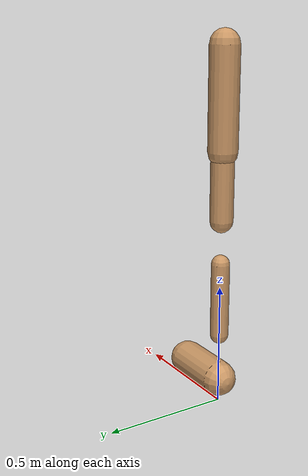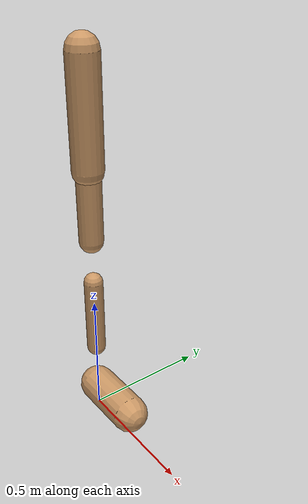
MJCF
<mujoco model="walker2d">
  <compiler angle="degree" coordinate="global" inertiafromgeom="true" />
  <default>
    <joint armature="0.01" damping=".1" limited="true" />
    <geom conaffinity="0" condim="3" contype="1" density="1000" friction="0.8 .1 .1" rgba="0.8 0.6 .4 1" />
  </default>
  <option integrator="RK4" timestep="0.002" />
  <worldbody>

    <body name="torso" pos="0 0 -0.3747233483079311">
      <joint armature="0" axis="1 0 0" damping="0" limited="false" name="ignorex" pos="0 0 0" stiffness="0" type="slide" />
      <joint armature="0" axis="0 0 1" damping="0" limited="false" name="ignorez" pos="0 0 0" ref="1.25" stiffness="0" type="slide" />
      <joint armature="0" axis="0 1 0" damping="0" limited="false" name="ignorey" pos="0 0 0" stiffness="0" type="hinge" />
      <geom fromto="0 0 1.45 0 0 1.05" name="torso_geom" size="0.058686557943558405" type="capsule" />
      <body name="thigh">
        <joint axis="0 -1 0" name="thigh_joint" pos="0 0 1.05" range="-150 0" type="hinge" />
        <geom fromto="0.0 0.0 1.05 0.0 0.0 0.7775005334090199" name="thigh_geom" size="0.04634884453320999" type="capsule" />
        <body name="leg" pos="0.0 0.0 0.17750053340901994">
          <joint axis="0 -1 0" name="leg_joint" pos="0 0 0.6" range="-150 0" type="hinge" />
          <geom fromto="0.0 0.0 0.6 0.0 0.0 0.2972228148989111" name="leg_geom" size="0.03707907562656799" type="capsule" />
          <body name="foot" pos="0.0 0.0 0.1972228148989111">
            <joint axis="0 -1 0" name="foot_joint" pos="0 0 0.1" range="-45 45" type="hinge" />
            <geom fromto="-0.0 0.0 0.1 0.22793254558870726 0.0 0.1" name="foot_geom" size="0.07240134912382869" type="capsule" />
          </body>
        </body>
      </body>

      <body name="thigh_left">
        <joint axis="0 -1 0" name="thigh_left_joint" pos="0 0 1.05" range="-150 0" type="hinge" />
        <geom fromto="0.0 0.0 1.05 0.0 0.0 0.7775005334090199" name="thigh_left_geom" rgba=".7 .3 .6 1" size="0.04634884453320999" type="capsule" />
        <body name="leg_left" pos="0.0 0.0 0.17750053340901994">
          <joint axis="0 -1 0" name="leg_left_joint" pos="0 0 0.6" range="-150 0" type="hinge" />
          <geom fromto="0.0 0.0 0.6 0.0 0.0 0.2972228148989111" name="leg_left_geom" rgba=".7 .3 .6 1" size="0.03707907562656799" type="capsule" />
          <body name="foot_left" pos="0.0 0.0 0.1972228148989111">
            <joint axis="0 -1 0" name="foot_left_joint" pos="0 0 0.1" range="-45 45" type="hinge" />
            <geom fromto="-0.0 0.0 0.1 0.22793254558870726 0.0 0.1" name="foot_left_geom" rgba=".7 .3 .6 1" size="0.07240134912382869" type="capsule" />
          </body>
        </body>
      </body>
    </body>
  </worldbody>
  <actuator>

    <motor ctrllimited="true" ctrlrange="-1.0 1.0" gear="100" joint="thigh_joint" />
    <motor ctrllimited="true" ctrlrange="-1.0 1.0" gear="100" joint="leg_joint" />
    <motor ctrllimited="true" ctrlrange="-1.0 1.0" gear="100" joint="foot_joint" />
    <motor ctrllimited="true" ctrlrange="-1.0 1.0" gear="100" joint="thigh_left_joint" />
    <motor ctrllimited="true" ctrlrange="-1.0 1.0" gear="100" joint="leg_left_joint" />
    <motor ctrllimited="true" ctrlrange="-1.0 1.0" gear="100" joint="foot_left_joint" />

  </actuator>
</mujoco>
